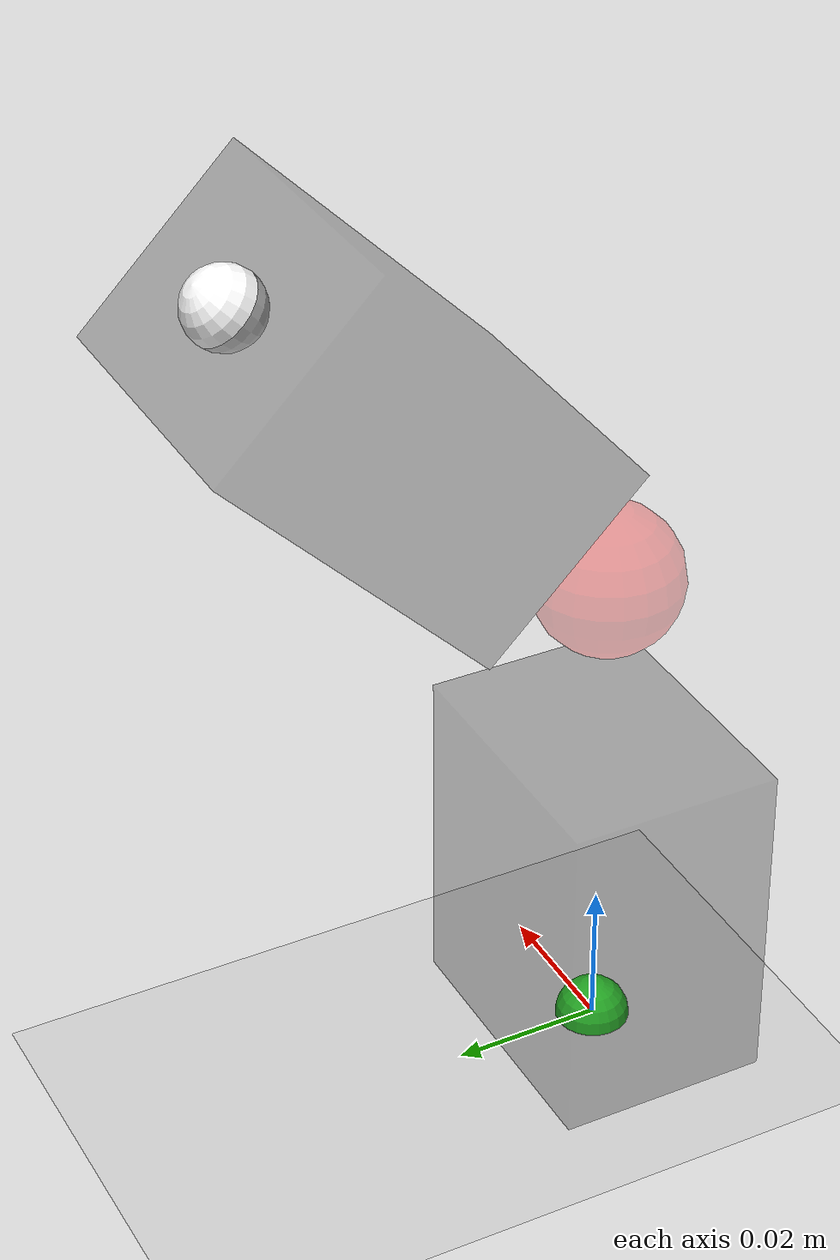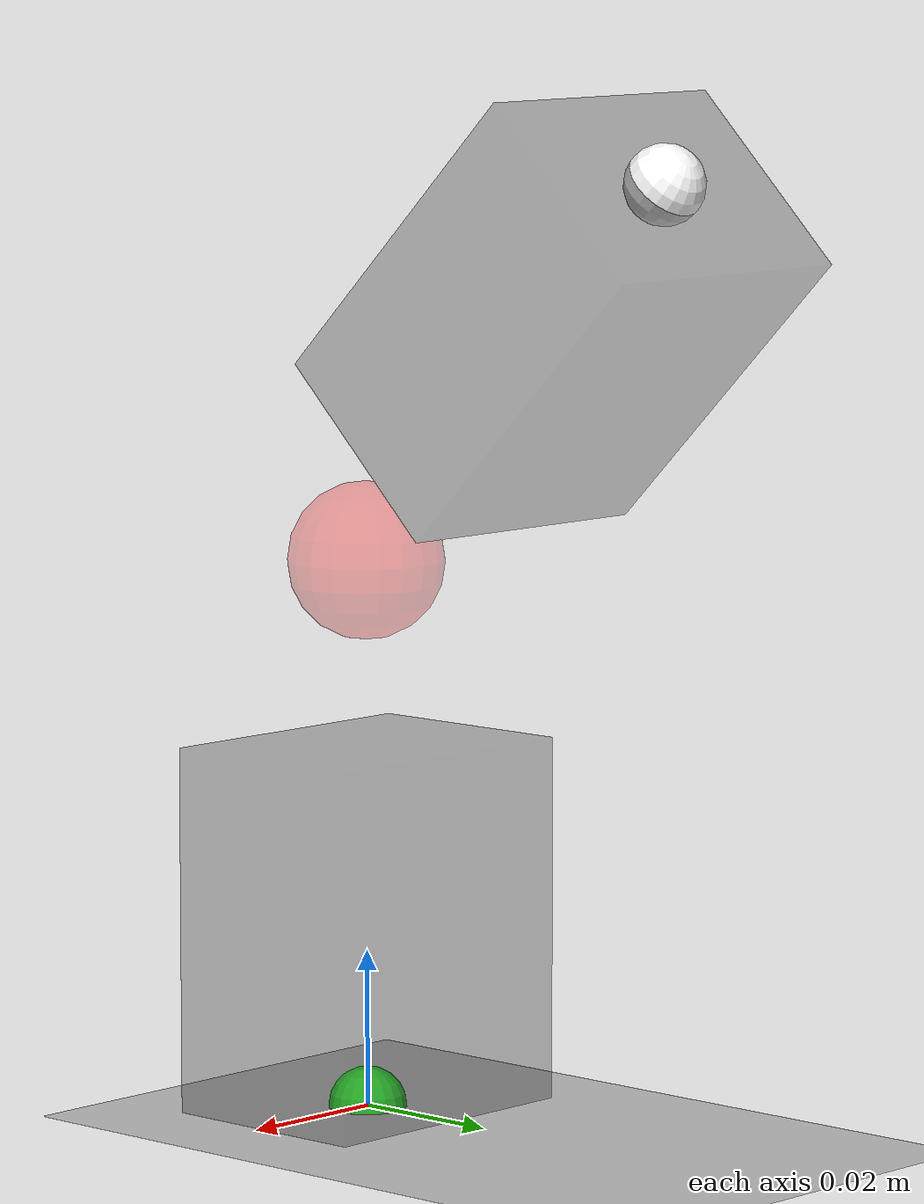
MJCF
<mujoco model="reacher">
	<compiler angle="radian" inertiafromgeom="true" coordinate="local"/>
	<default>
		<joint armature="1" damping="1" limited="true"/>
		<geom contype="0" friction="1 0.1 0.1" rgba="0.7 0.7 0.7 1"/>
		<default class="dyn_motor">
			<geom rgba="0.1 0.1 0.1 .3" size=".019 .0143 .0233"
				  type="box" conaffinity="0" mass="0.136"/>
			<velocity ctrllimited="true" ctrlrange="-2.0 2.0"
					  forcelimited="true" forcerange="-2.0 2.0"
					  kv="2"/>
		</default>
	</default>
	<option gravity="0 0 -9.81" integrator="RK4" timestep="0.01"/>
	<worldbody>
		<light diffuse=".5 .5 .4" pos="0 0 3" dir="0 0 -1"/>
		<body>
			<geom type="plane" size="1 1 0.01" rgba=".8 .8 .8 1"/>
		</body>
		<!-- Arm -->
		<geom name="motor0_geom" class="dyn_motor" pos="0 0 .0233"/>
		<body name="angle_body" pos="0 0 0.0349">
			<geom name="angle_geom" pos="0 0 0.0349" mass="0.01" rgba="1 0 0 .3" size=".01" type="sphere"/>
			<joint axis="1 0 0" range="-1 1.8" name="joint0" type="hinge"/>
			<body name="motor2_body" pos="0 0.0247 0.0595" euler="-0.785 0 0">
				<joint axis="1 0 0" name="joint1" range="-2.0 2.0" type="hinge"/>
				<geom name="motor1_geom" class="dyn_motor" pos="0 0 0.0116"/>
				<body name="tip" pos="0 0 .0349">
					<geom type="sphere" size=".005" rgba="1 1 1 1" mass="0"/>
				</body>
			</body>
		</body>
		<body name="target" pos="0 0 0">
			<joint armature="0" axis="0 1 0" damping="0.1" limited="true" name="target_y" range="-.2 .2" stiffness="0" type="slide"/>
			<joint armature="0" axis="0 0 1" damping="0.1" limited="true" name="target_z" range="-.2 .2" stiffness="0" type="slide"/>
			<geom conaffinity="0" contype="0" name="target" pos="0 0 0" rgba="0.2 0.9 0.2 1" size=".005" type="sphere"/>
		</body>
	</worldbody>
	<actuator>
		<velocity joint="joint0" class="dyn_motor"/>
		<velocity joint="joint1" class="dyn_motor"/>
		<position joint="target_y" kp="2" />
		<position joint="target_z" kp="2" />
	</actuator>
</mujoco>
